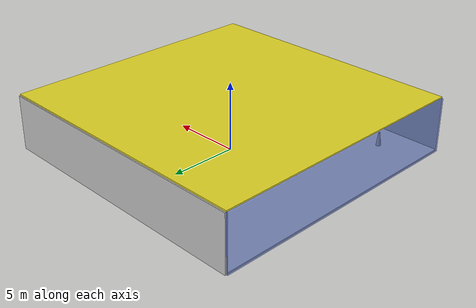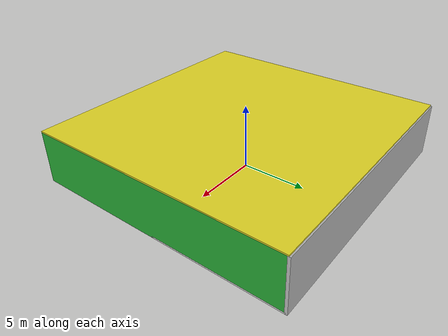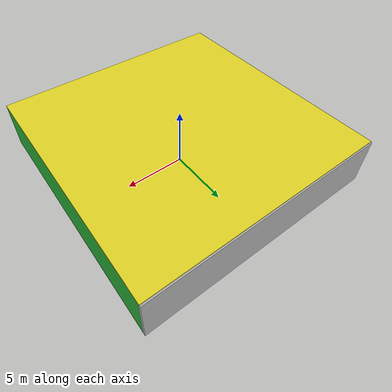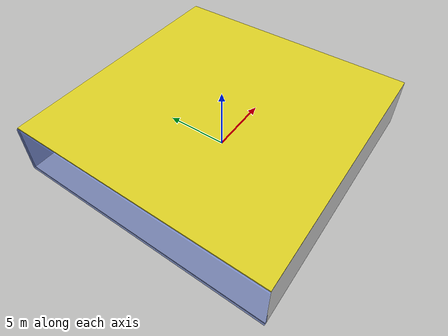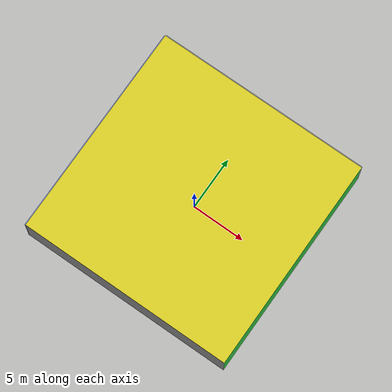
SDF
<sdf version="1.4">
 <world name="default">
  <physics type="ode">
   <max_step_size>0.001</max_step_size>
   <real_time_factor>1</real_time_factor>
   <real_time_update_rate>1000</real_time_update_rate>
   <gravity>0 0 -9.8</gravity>
  </physics>
  <scene><ambient>0.4 0.4 0.4 1</ambient><background>0.7 0.7 0.7 1</background><shadows>1</shadows></scene>
  <model name="Surrounding">
   <static>1</static>
   <link name="Ceiling">
    <collision name="Ceiling_Collision"><geometry><box><size>20 20 0.1</size></box></geometry></collision>
    <visual name="Ceiling_Visual">
     <geometry><box><size>20 20 0.1</size></box></geometry>
     <material>
      <script><uri>file://media/materials/scripts/gazebo.material</uri><name>Gazebo/Yellow</name></script>
     </material>
    </visual>
    <pose>0 0 4.05 0 0 0</pose>
   </link>
   <link name="Wall_South">
    <collision name="Wall_South_Collision">
     <geometry><box><size>20 0 4</size></box></geometry>
     <pose>0 0 2 0 -0 0</pose>
    </collision>
    <visual name="Wall_South_Visual">
     <pose>0 0 2 0 -0 0</pose>
     <geometry><box><size>20 0 4</size></box></geometry>
     <material>
      <script><uri>file://media/materials/scripts/gazebo.material</uri><name>Gazebo/LightOn</name></script>
     </material>
    </visual>
    <velocity_decay><linear>0</linear><angular>0</angular></velocity_decay>
    <pose>0 -10 0 0 -0 0</pose>
   </link>
   <link name="Wall_East">
    <collision name="Wall_21_Collision">
     <geometry><box><size>20 0 4</size></box></geometry>
     <pose>0 0 2 0 -0 0</pose>
    </collision>
    <visual name="Wall_21_Visual">
     <pose>0 0 2 0 -0 0</pose>
     <geometry><box><size>20 0 4</size></box></geometry>
     <material>
      <script><uri>file://media/materials/scripts/gazebo.material</uri><name>Gazebo/GreenGlow</name></script>
     </material>
    </visual>
    <velocity_decay><linear>0</linear><angular>0</angular></velocity_decay>
    <pose>10 0 0 0 -0 1.5708</pose>
   </link>
   <link name="Wall_North">
    <collision name="Wall_22_Collision">
     <geometry><box><size>20 0.2 4</size></box></geometry>
     <pose>0 0 2 0 -0 0</pose>
    </collision>
    <visual name="Wall_22_Visual">
     <pose>0 0 2 0 -0 0</pose>
     <geometry><box><size>20 0.2 4</size></box></geometry>
     <material>
      <script><uri>file://media/materials/scripts/gazebo.material</uri><name>Gazebo/Pioneer2Body</name></script>
     </material>
    </visual>
    <velocity_decay><linear>0</linear><angular>0</angular></velocity_decay>
    <pose>0 10 0 0 -0 0</pose>
   </link>
   <link name="Wall_West">
    <collision name="Wall_23_Collision">
     <geometry><box><size>20 0.2 4</size></box></geometry>
     <pose>0 0 2 0 -0 0</pose>
    </collision>
    <visual name="Wall_23_Visual">
     <pose>0 0 2 0 -0 0</pose>
     <geometry><box><size>20 0.2 4</size></box></geometry>
     <material>
      <script><uri>file://media/materials/scripts/gazebo.material</uri><name>Gazebo/BlueTransparent</name></script>
     </material>
    </visual>
    <velocity_decay><linear>0</linear><angular>0</angular></velocity_decay>
    <pose>-10 0 0 0 0 -1.5708</pose>
   </link>
   <link name="Ground_link">
    <collision name="collision">
     <pose>0 0 .05 0 -0 0</pose>
     <geometry><box><size>20 20 0.1</size></box></geometry>
    </collision>
    <visual name="visual">
     <pose>0 0 .05 0 -0 0</pose>
     <geometry><box><size>20 20 0.1</size></box></geometry>
     <material>
      <script><uri>file://media/materials/scripts/gazebo.material</uri><name>Gazebo/White</name></script>
     </material>
    </visual>
   </link>
   <static>1</static>
  </model>
  <spherical_coordinates>
   <surface_model>EARTH_WGS84</surface_model>
   <latitude_deg>0</latitude_deg>
   <longitude_deg>0</longitude_deg>
   <elevation>0</elevation>
   <heading_deg>0</heading_deg>
  </spherical_coordinates>
  <light name="lightball_0" type="diffuse">
   <diffuse>0.8 0.8 0.8 1</diffuse>
   <specular>0.2 0.2 0.2 1</specular>
   <attenuation>
    <range>100</range>
    <constant>0.7</constant>
    <linear>0.01</linear>
    <quadratic>0.001</quadratic>
   </attenuation>
   <direction>-0.5 0.1 -0.9</direction>
   <pose>-9.44627744026 -5.64983511373 1.39439101052 0 0 0</pose>
  </light>
  <light name="lightball_1" type="diffuse">
   <diffuse>0.8 0.8 0.8 1</diffuse>
   <specular>0.2 0.2 0.2 1</specular>
   <attenuation>
    <range>100</range>
    <constant>0.7</constant>
    <linear>0.01</linear>
    <quadratic>0.001</quadratic>
   </attenuation>
   <direction>-0.5 0.1 -0.9</direction>
   <pose>3.94450990264 -2.96710950894 3.88656631238 0 0 0</pose>
  </light>
  <light name="lightball_2" type="diffuse">
   <diffuse>0.8 0.8 0.8 1</diffuse>
   <specular>0.2 0.2 0.2 1</specular>
   <attenuation>
    <range>100</range>
    <constant>0.7</constant>
    <linear>0.01</linear>
    <quadratic>0.001</quadratic>
   </attenuation>
   <direction>-0.5 0.1 -0.9</direction>
   <pose>-3.86043011814 -9.18703638479 1.15539836416 0 0 0</pose>
  </light>
  <light name="lightball_3" type="diffuse">
   <diffuse>0.8 0.8 0.8 1</diffuse>
   <specular>0.2 0.2 0.2 1</specular>
   <attenuation>
    <range>100</range>
    <constant>0.7</constant>
    <linear>0.01</linear>
    <quadratic>0.001</quadratic>
   </attenuation>
   <direction>-0.5 0.1 -0.9</direction>
   <pose>4.39659114941 -0.631260857679 0.599301235556 0 0 0</pose>
  </light>
  <light name="lightball_4" type="diffuse">
   <diffuse>0.8 0.8 0.8 1</diffuse>
   <specular>0.2 0.2 0.2 1</specular>
   <attenuation>
    <range>100</range>
    <constant>0.7</constant>
    <linear>0.01</linear>
    <quadratic>0.001</quadratic>
   </attenuation>
   <direction>-0.5 0.1 -0.9</direction>
   <pose>5.09493875646 1.88164756525 0.518529411772 0 0 0</pose>
  </light>
  <light name="lightball_5" type="diffuse">
   <diffuse>0.8 0.8 0.8 1</diffuse>
   <specular>0.2 0.2 0.2 1</specular>
   <attenuation>
    <range>100</range>
    <constant>0.7</constant>
    <linear>0.01</linear>
    <quadratic>0.001</quadratic>
   </attenuation>
   <direction>-0.5 0.1 -0.9</direction>
   <pose>8.53862519711 2.7561854836 3.81745285543 0 0 0</pose>
  </light>
  <light name="lightball_6" type="diffuse">
   <diffuse>0.8 0.8 0.8 1</diffuse>
   <specular>0.2 0.2 0.2 1</specular>
   <attenuation>
    <range>100</range>
    <constant>0.7</constant>
    <linear>0.01</linear>
    <quadratic>0.001</quadratic>
   </attenuation>
   <direction>-0.5 0.1 -0.9</direction>
   <pose>-9.31935313972 -5.63856967249 1.44800285786 0 0 0</pose>
  </light>
  <include>
   <uri>model://construction_cone</uri>
   <pose>-6.86505280818 -7.68626423289 0 0 0 0.258885097971</pose>
  </include>
  <include><uri>model://cabinet</uri><pose>-3.40437652982 7.33062680077 0 0 0 2.64160564941</pose></include>
  <include><uri>model://cabinet</uri><pose>3.48273122581 8.43314378676 0 0 0 1.30676837407</pose></include>
  <include><uri>model://cabinet</uri><pose>7.35672128457 -7.81042891749 0 0 0 0.348104942736</pose></include>
  <include>
   <uri>model://robocup_3Dsim_goal</uri>
   <pose>6.91916106006 0.344386891821 0 0 0 0.338024907136</pose>
  </include>
 </world>
</sdf>

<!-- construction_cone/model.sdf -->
<sdf version="1.5">
  <model name="Construction Cone">
    <link name="link">
      <collision name="collision">
        <geometry>
          <mesh>
            <scale>10 10 10</scale>
            <uri>file://isr-testbed/construction_cone/meshes/construction_cone.dae</uri>
          </mesh>
        </geometry>
      </collision>
      <visual name="visual">
        <geometry>
          <mesh>
            <scale>10 10 10</scale>
            <uri>file://isr-testbed/construction_cone/meshes/construction_cone.dae</uri>
          </mesh>
        </geometry>
      </visual>
    </link>
  </model>
</sdf>

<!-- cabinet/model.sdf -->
<sdf version="1.5">
  <model name="cabinet">
    <static>true</static>
    <link name="cabinet_bottom_plate">
      <inertial>
        <pose>0 0 -1 0 0 0</pose>
        <inertia>
          <ixx>2.050000</ixx>
          <ixy>0</ixy>
          <ixz>0</ixz>
          <iyy>2.050000</iyy>
          <iyz>0</iyz>
          <izz>2.050000</izz>
        </inertia>
        <mass>25.000000</mass>
      </inertial>
      <collision name="cabinet_bottom_plate_geom">
        <pose>0 0 0.010000 0 0 0</pose>
        <geometry>
          <box>
            <size>0.450000 0.450000 0.020000</size>
          </box>
        </geometry>
      </collision>
      <visual name="cabinet_bottom_plate_geom_visual">
        <pose>0 0 0.010000 0 0 0</pose>
        <geometry>
          <box>
            <size>0.450000 0.450000 0.020000</size>
          </box>
        </geometry>
        <material>
          <script>
            <uri>model://media/materials/scripts/gazebo.material</uri>
            <name>Gazebo/Wood</name>
          </script>
        </material>
      </visual>
      <collision name="cabinet_bottom_plate_geom_cabinet_back_plate">
        <pose>0.235000 0 0.510000 0 0 0</pose>
        <geometry>
          <box>
            <size>0.020000 0.450000 1.020000</size>
          </box>
        </geometry>
      </collision>
      <visual name="cabinet_bottom_plate_geom_cabinet_back_plate_visual">
        <pose>0.235000 0 0.510000 0 0 0</pose>
        <geometry>
          <box>
            <size>0.020000 0.450000 1.020000</size>
          </box>
        </geometry>
        <material>
          <script>
            <uri>model://media/materials/scripts/gazebo.material</uri>
            <name>Gazebo/Wood</name>
          </script>
        </material>
      </visual>
      <collision name="cabinet_bottom_plate_geom_cabinet_left_plate">
        <pose>0 0.235000 0.510000 0 0 0</pose>
        <geometry>
          <box>
            <size>0.450000 0.020000 1.020000</size>
          </box>
        </geometry>
      </collision>
      <visual name="cabinet_bottom_plate_geom_cabinet_left_plate_visual">
        <pose>0 0.235000 0.510000 0 0 0</pose>
        <geometry>
          <box>
            <size>0.450000 0.020000 1.020000</size>
          </box>
        </geometry>
        <material>
          <script>
            <uri>model://media/materials/scripts/gazebo.material</uri>
            <name>Gazebo/Wood</name>
          </script>
        </material>
      </visual>
      <collision name="cabinet_bottom_plate_geom_cabinet_middle_plate">
        <pose>0 0 0.510000 0 0 0</pose>
        <geometry>
          <box>
            <size>0.450000 0.450000 0.020000</size>
          </box>
        </geometry>
      </collision>
      <visual name="cabinet_bottom_plate_geom_cabinet_middle_plate_visual">
        <pose>0 0 0.510000 0 0 0</pose>
        <geometry>
          <box>
            <size>0.450000 0.450000 0.020000</size>
          </box>
        </geometry>
        <material>
          <script>
            <uri>model://media/materials/scripts/gazebo.material</uri>
            <name>Gazebo/Wood</name>
          </script>
        </material>
      </visual>
      <collision name="cabinet_bottom_plate_geom_cabinet_right_plate">
        <pose>0 -0.235000 0.510000 0 0 0</pose>
        <geometry>
          <box>
            <size>0.450000 0.020000 1.020000</size>
          </box>
        </geometry>
      </collision>
      <visual name="cabinet_bottom_plate_geom_cabinet_right_plate_visual">
        <pose>0 -0.235000 0.510000 0 0 0</pose>
        <geometry>
          <box>
            <size>0.450000 0.020000 1.020000</size>
          </box>
        </geometry>
        <material>
          <script>
            <uri>model://media/materials/scripts/gazebo.material</uri>
            <name>Gazebo/Wood</name>
          </script>
        </material>
      </visual>
      <collision name="cabinet_bottom_plate_geom_cabinet_top_plate">
        <pose>0 0 1.010000 0 0 0</pose>
        <geometry>
          <box>
            <size>0.450000 0.450000 0.020000</size>
          </box>
        </geometry>
      </collision>
      <visual name="cabinet_bottom_plate_geom_cabinet_top_plate_visual">
        <pose>0 0 1.010000 0 0 0</pose>
        <geometry>
          <box>
            <size>0.450000 0.450000 0.020000</size>
          </box>
        </geometry>
        <material>
          <script>
            <uri>model://media/materials/scripts/gazebo.material</uri>
            <name>Gazebo/Wood</name>
          </script>
        </material>
      </visual>
    </link>
  </model>
</sdf>

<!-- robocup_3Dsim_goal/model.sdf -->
<sdf version="1.5">
  <model name="robocup_3d_goal">
    <static>true</static>
    <link name="left_post">
      <pose>0 1.05 0.45 0 0 0</pose>
      <collision name="collision">
        <geometry>
          <cylinder>
            <radius>0.05</radius>
            <length>0.9</length>
          </cylinder>
        </geometry>
      </collision>
      <visual name="visual">
        <geometry>
          <cylinder>
            <radius>0.05</radius>
            <length>0.9</length>
          </cylinder>
        </geometry>
        <material>
          <script>
            <uri>file://media/materials/scripts/gazebo.material</uri>
            <name>Gazebo/ZincYellow</name>
          </script>
        </material>
      </visual>
    </link>
    <link name="left_support_horiz_lower">
      <pose>0.30 1.05 0.01 0 0 0</pose>
      <collision name="collision">
        <geometry>
          <box>
            <size>0.50 0.02 0.02</size>
          </box>
        </geometry>
      </collision>
      <visual name="visual">
        <geometry>
          <box>
            <size>0.50 0.02 0.02</size>
          </box>
        </geometry>
        <material>
          <script>
            <uri>file://media/materials/scripts/gazebo.material</uri>
            <name>Gazebo/White</name>
          </script>
        </material>
      </visual>
    </link>
    <link name="left_support_horiz_upper">
      <pose>0.30 1.05 0.79 0 0 0</pose>
      <collision name="collision">
        <geometry>
          <box>
            <size>0.50 0.02 0.02</size>
          </box>
        </geometry>
      </collision>
      <visual name="visual">
        <geometry>
          <box>
            <size>0.50 0.02 0.02</size>
          </box>
        </geometry>
        <material>
          <script>
            <uri>file://media/materials/scripts/gazebo.material</uri>
            <name>Gazebo/White</name>
          </script>
        </material>
      </visual>
    </link>
    <link name="left_support_vertical">
      <pose>0.56 1.05 0.4 0 1.5708 0</pose>
      <collision name="collision">
        <geometry>
          <box>
            <size>0.80 0.02 0.02</size>
          </box>
        </geometry>
      </collision>
      <visual name="visual">
        <geometry>
          <box>
            <size>0.80 0.02 0.02</size>
          </box>
        </geometry>
        <material>
          <script>
            <uri>file://media/materials/scripts/gazebo.material</uri>
            <name>Gazebo/White</name>
          </script>
        </material>
      </visual>
    </link>
    <link name="right_support_horiz_lower">
      <pose>0.30 -1.05 0.01 0 0 0</pose>
      <collision name="collision">
        <geometry>
          <box>
            <size>0.50 0.02 0.02</size>
          </box>
        </geometry>
      </collision>
      <visual name="visual">
        <geometry>
          <box>
            <size>0.50 0.02 0.02</size>
          </box>
        </geometry>
        <material>
          <script>
            <uri>file://media/materials/scripts/gazebo.material</uri>
            <name>Gazebo/White</name>
          </script>
        </material>
      </visual>
    </link>
    <link name="right_support_horiz_upper">
      <pose>0.30 -1.05 0.79 0 0 0</pose>
      <collision name="collision">
        <geometry>
          <box>
            <size>0.50 0.02 0.02</size>
          </box>
        </geometry>
      </collision>
      <visual name="visual">
        <geometry>
          <box>
            <size>0.50 0.02 0.02</size>
          </box>
        </geometry>
        <material>
          <script>
            <uri>file://media/materials/scripts/gazebo.material</uri>
            <name>Gazebo/White</name>
          </script>
        </material>
      </visual>
    </link>
    <link name="right_support_vertical">
      <pose>0.56 -1.05 0.4 0 1.5708 0</pose>
      <collision name="collision">
        <geometry>
          <box>
            <size>0.80 0.02 0.02</size>
          </box>
        </geometry>
      </collision>
      <visual name="visual">
        <geometry>
          <box>
            <size>0.80 0.02 0.02</size>
          </box>
        </geometry>
        <material>
          <script>
            <uri>file://media/materials/scripts/gazebo.material</uri>
            <name>Gazebo/White</name>
          </script>
        </material>
      </visual>
    </link>
    <link name="center_support_horiz_lower">
      <pose>0.56 0 0.01 0 1.5708 0</pose>
      <collision name="collision">
        <geometry>
          <box>
            <size>0.02 2.08 0.02</size>
          </box>
        </geometry>
      </collision>
      <visual name="visual">
        <geometry>
          <box>
            <size>0.02 2.08 0.02</size>
          </box>
        </geometry>
        <material>
          <script>
            <uri>file://media/materials/scripts/gazebo.material</uri>
            <name>Gazebo/White</name>
          </script>
        </material>
      </visual>
    </link>
    <link name="center_support_horiz_upper">
      <pose>0.56 0 0.79 0 1.5708 0</pose>
      <collision name="collision">
        <geometry>
          <box>
            <size>0.02 2.08 0.02</size>
          </box>
        </geometry>
      </collision>
      <visual name="visual">
        <geometry>
          <box>
            <size>0.02 2.08 0.02</size>
          </box>
        </geometry>
        <material>
          <script>
            <uri>file://media/materials/scripts/gazebo.material</uri>
            <name>Gazebo/White</name>
          </script>
        </material>
      </visual>
    </link>
    <link name="right_post">
      <pose>0 -1.05 0.45 0 0 0</pose>
      <collision name="collision">
        <geometry>
          <cylinder>
            <radius>0.05</radius>
            <length>0.9</length>
          </cylinder>
        </geometry>
      </collision>
      <visual name="visual">
        <geometry>
          <cylinder>
            <radius>0.05</radius>
            <length>0.9</length>
          </cylinder>
        </geometry>
        <material>
          <script>
            <uri>file://media/materials/scripts/gazebo.material</uri>
            <name>Gazebo/ZincYellow</name>
          </script>
        </material>
      </visual>
    </link>
    <link name="crossbar">
      <pose>0 0 0.85 1.57 1.57 0</pose>
      <collision name="collision">
        <geometry>
          <cylinder>
            <radius>0.05</radius>
            <length>2.0</length>
          </cylinder>
        </geometry>
      </collision>
      <visual name="visual">
        <geometry>
          <cylinder>
            <radius>0.05</radius>
            <length>2.0</length>
          </cylinder>
        </geometry>
        <material>
          <script>
            <uri>file://media/materials/scripts/gazebo.material</uri>
            <name>Gazebo/ZincYellow</name>
          </script>
        </material>
      </visual>
    </link>
    <link name="center_net">
      <pose>0.56 0 0.40 0 0 0</pose>
      <collision name="collision">
        <geometry>
          <box>
            <size>0.01 2.1 0.80</size>
          </box>
        </geometry>
      </collision>
      <visual name="visual">
        <geometry>
          <box>
            <size>0.01 2.1 0.80</size>
          </box>
        </geometry>
        <material>
          <script>
            <uri>model://../model_source/models/robocup09_spl_field/materials/scripts/</uri>
            <uri>model://../model_source/models/robocup09_spl_field/materials/textures/</uri>
            <name>RoboCup/Net</name>
          </script>
        </material>
      </visual>
    </link>
    <link name="left_net">
      <pose>0.30 1.05 0.40 0 0 0</pose>
      <collision name="collision">
        <geometry>
          <box>
            <size>0.50 0.01 0.76</size>
          </box>
        </geometry>
      </collision>
      <visual name="visual">
        <geometry>
          <box>
            <size>0.50 0.01 0.76</size>
          </box>
        </geometry>
        <material>
          <script>
            <uri>model://../model_source/models/robocup09_spl_field/materials/scripts/</uri>
            <uri>model://../model_source/models/robocup09_spl_field/materials/textures/</uri>
            <name>RoboCup/Net</name>
          </script>
        </material>
      </visual>
    </link>
    <link name="right_net">
      <pose>0.30 -1.05 0.40 0 0 0</pose>
      <collision name="collision">
        <geometry>
          <box>
            <size>0.50 0.01 0.76</size>
          </box>
        </geometry>
      </collision>
      <visual name="visual">
        <geometry>
          <box>
            <size>0.50 0.01 0.76</size>
          </box>
        </geometry>
        <material>
          <script>
            <uri>model://../model_source/models/robocup09_spl_field/materials/scripts/</uri>
            <uri>model://../model_source/models/robocup09_spl_field/materials/textures/</uri>
            <name>RoboCup/Net</name>
          </script>
        </material>
      </visual>
    </link>
  </model>
</sdf>
